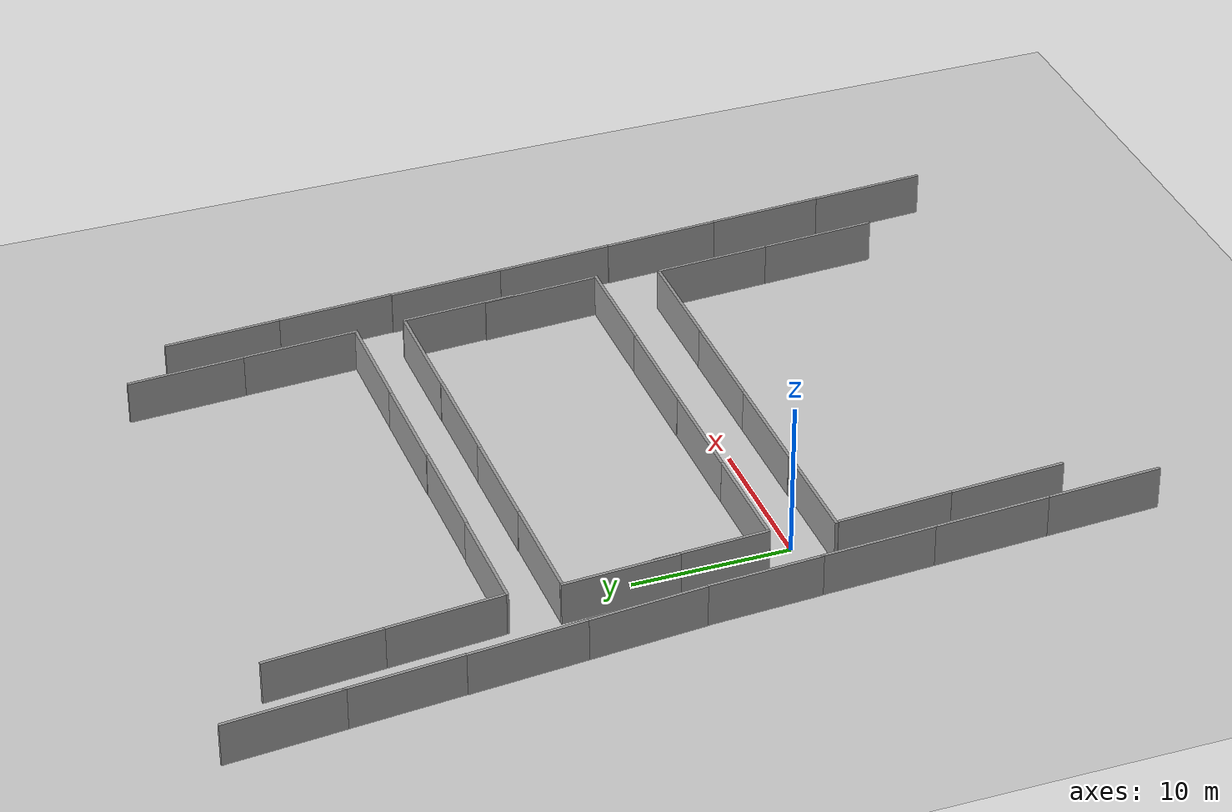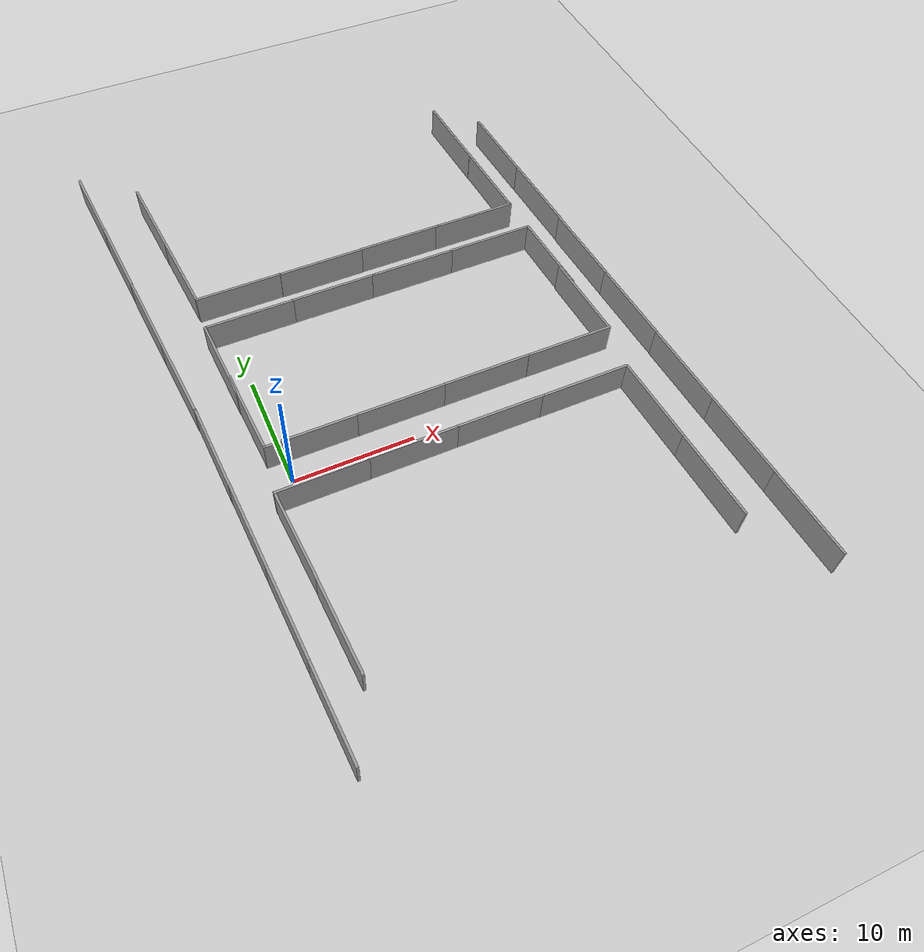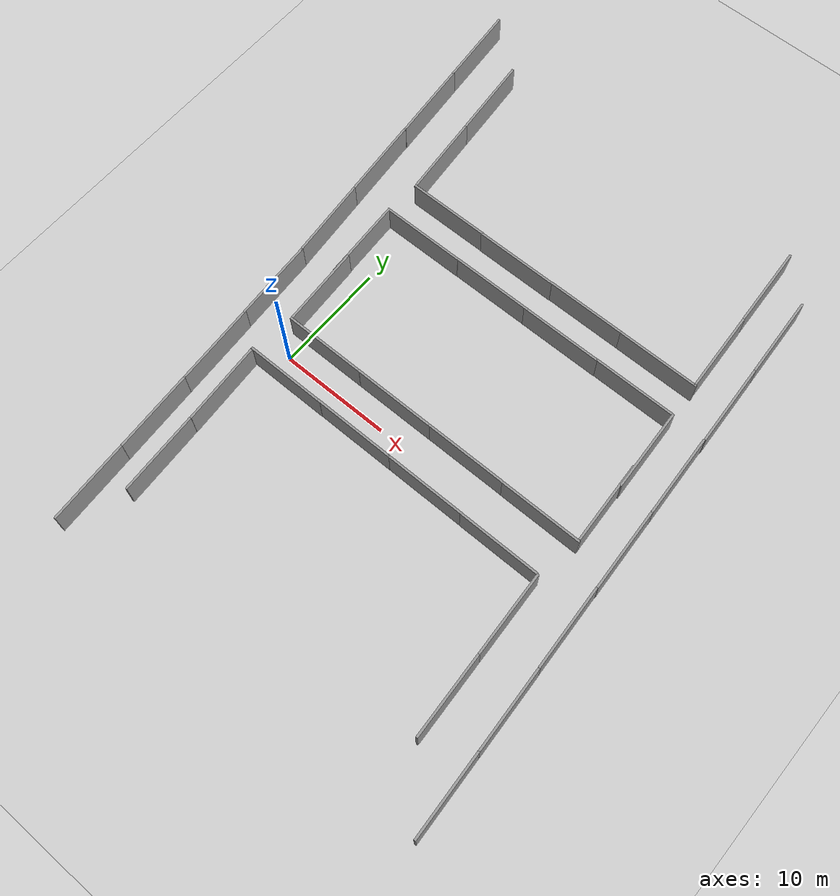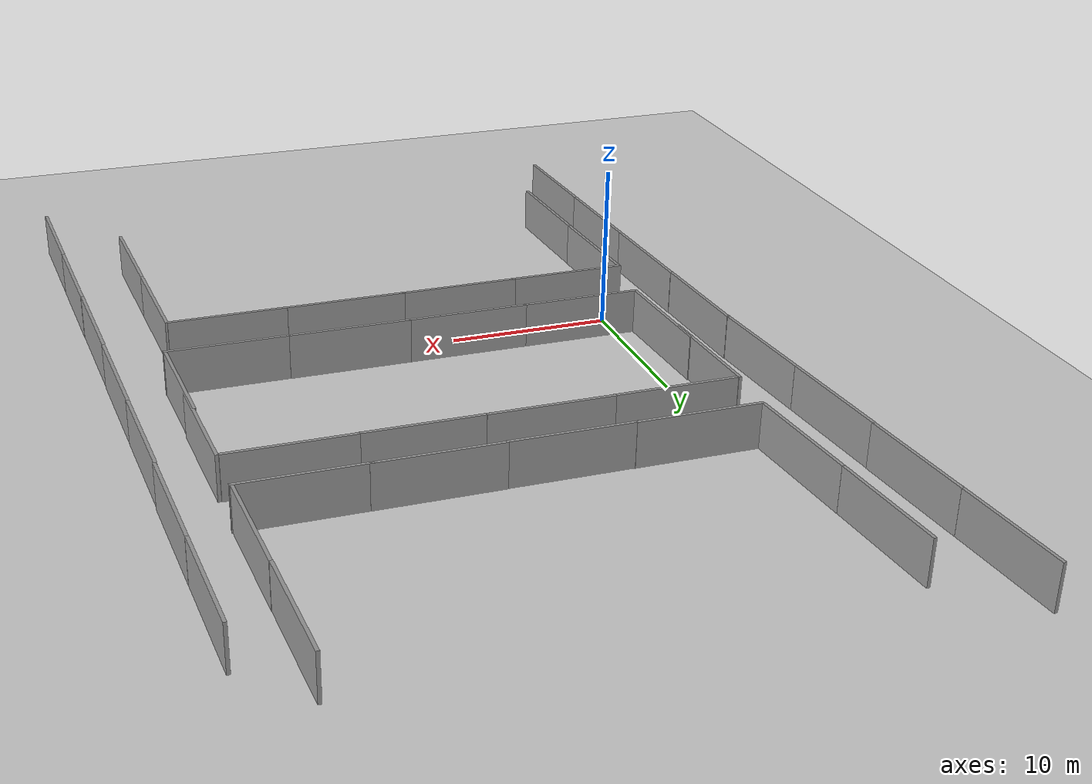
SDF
<sdf version="1.7">
 <world name="default">
  <light name="sun" type="directional">
   <pose>0 0 10 0 -0 0</pose>
   <diffuse>0.8 0.8 0.8 1</diffuse>
   <specular>0.2 0.2 0.2 1</specular>
   <attenuation>
    <range>1000</range>
    <constant>0.9</constant>
    <linear>0.01</linear>
    <quadratic>0.001</quadratic>
   </attenuation>
   <direction>-0.5 0.1 -0.9</direction>
   <spot><inner_angle>0</inner_angle><outer_angle>0</outer_angle><falloff>0</falloff></spot>
  </light>
  <model name="ground_plane">
   <static>1</static>
   <link name="link">
    <collision name="collision">
     <geometry><plane><normal>0 0 1</normal><size>100 100</size></plane></geometry>
     <surface>
      <contact><collide_bitmask>65535</collide_bitmask></contact>
      <friction><ode><mu>100</mu><mu2>50</mu2></ode></friction>
     </surface>
    </collision>
    <visual name="visual">
     <cast_shadows>0</cast_shadows>
     <geometry><plane><normal>0 0 1</normal><size>100 100</size></plane></geometry>
     <material>
      <script><uri>file://media/materials/scripts/gazebo.material</uri><name>Gazebo/Grey</name></script>
     </material>
    </visual>
   </link>
  </model>
  <gravity>0 0 -9.8</gravity>
  <magnetic_field>6e-06 2.3e-05 -4.2e-05</magnetic_field>
  <atmosphere type="adiabatic"/>
  <physics type="ode">
   <max_step_size>0.001</max_step_size>
   <real_time_factor>1</real_time_factor>
   <real_time_update_rate>1000</real_time_update_rate>
  </physics>
  <scene><ambient>0.4 0.4 0.4 1</ambient><background>0.7 0.7 0.7 1</background><shadows>1</shadows></scene>
  <spherical_coordinates>
   <surface_model>EARTH_WGS84</surface_model>
   <latitude_deg>0</latitude_deg>
   <longitude_deg>0</longitude_deg>
   <elevation>0</elevation>
   <heading_deg>0</heading_deg>
  </spherical_coordinates>
  <model name="grey_wall_0">
   <static>1</static>
   <link name="link">
    <pose>0 0 1.4 0 -0 0</pose>
    <collision name="collision"><geometry><box><size>7.5 0.2 2.8</size></box></geometry></collision>
    <visual name="visual">
     <cast_shadows>0</cast_shadows>
     <geometry><box><size>7.5 0.2 2.8</size></box></geometry>
     <material>
      <script>
       <uri>model://grey_wall/materials/scripts</uri>
       <uri>model://grey_wall/materials/textures</uri>
       <name>vrc/grey_wall</name>
      </script>
     </material>
    </visual>
   </link>
   <pose>9.01545 -1.9992 0 0 -0 0</pose>
  </model>
  <model name="grey_wall_1">
   <static>1</static>
   <link name="link">
    <pose>0 0 1.4 0 -0 0</pose>
    <collision name="collision"><geometry><box><size>7.5 0.2 2.8</size></box></geometry></collision>
    <visual name="visual">
     <cast_shadows>0</cast_shadows>
     <geometry><box><size>7.5 0.2 2.8</size></box></geometry>
     <material>
      <script>
       <uri>model://grey_wall/materials/scripts</uri>
       <uri>model://grey_wall/materials/textures</uri>
       <name>vrc/grey_wall</name>
      </script>
     </material>
    </visual>
   </link>
   <pose>16.3388 -1.99889 0 0 -0 0</pose>
  </model>
  <model name="grey_wall_2">
   <static>1</static>
   <link name="link">
    <pose>0 0 1.4 0 -0 0</pose>
    <collision name="collision"><geometry><box><size>7.5 0.2 2.8</size></box></geometry></collision>
    <visual name="visual">
     <cast_shadows>0</cast_shadows>
     <geometry><box><size>7.5 0.2 2.8</size></box></geometry>
     <material>
      <script>
       <uri>model://grey_wall/materials/scripts</uri>
       <uri>model://grey_wall/materials/textures</uri>
       <name>vrc/grey_wall</name>
      </script>
     </material>
    </visual>
   </link>
   <pose>9.73554 2.01106 0 0 -0 0</pose>
  </model>
  <model name="grey_wall_4">
   <static>1</static>
   <link name="link">
    <pose>0 0 1.4 0 -0 0</pose>
    <collision name="collision"><geometry><box><size>7.5 0.2 2.8</size></box></geometry></collision>
    <visual name="visual">
     <cast_shadows>0</cast_shadows>
     <geometry><box><size>7.5 0.2 2.8</size></box></geometry>
     <material>
      <script>
       <uri>model://grey_wall/materials/scripts</uri>
       <uri>model://grey_wall/materials/textures</uri>
       <name>vrc/grey_wall</name>
      </script>
     </material>
    </visual>
   </link>
   <pose>17.1322 2.01632 0 0 -0 0</pose>
  </model>
  <model name="grey_wall">
   <static>1</static>
   <link name="link">
    <pose>0 0 1.4 0 -0 0</pose>
    <collision name="collision"><geometry><box><size>7.5 0.2 2.8</size></box></geometry></collision>
    <visual name="visual">
     <cast_shadows>0</cast_shadows>
     <geometry><box><size>7.5 0.2 2.8</size></box></geometry>
     <material>
      <script>
       <uri>model://grey_wall/materials/scripts</uri>
       <uri>model://grey_wall/materials/textures</uri>
       <name>vrc/grey_wall</name>
      </script>
     </material>
    </visual>
   </link>
   <pose>2.3701 2.00931 0 0 -0 0</pose>
  </model>
  <model name="grey_wall_3">
   <static>1</static>
   <link name="link">
    <pose>0 0 1.4 0 -0 0</pose>
    <collision name="collision"><geometry><box><size>7.5 0.2 2.8</size></box></geometry></collision>
    <visual name="visual">
     <cast_shadows>0</cast_shadows>
     <geometry><box><size>7.5 0.2 2.8</size></box></geometry>
     <material>
      <script>
       <uri>model://grey_wall/materials/scripts</uri>
       <uri>model://grey_wall/materials/textures</uri>
       <name>vrc/grey_wall</name>
      </script>
     </material>
    </visual>
   </link>
   <pose>1.78281 -2.0111 0 0 -0 0</pose>
  </model>
  <model name="grey_wall_2_clone">
   <static>1</static>
   <link name="link">
    <pose>0 0 1.4 0 -0 0</pose>
    <collision name="collision"><geometry><box><size>7.5 0.2 2.8</size></box></geometry></collision>
    <visual name="visual">
     <cast_shadows>0</cast_shadows>
     <geometry><box><size>7.5 0.2 2.8</size></box></geometry>
     <material>
      <script>
       <uri>model://grey_wall/materials/scripts</uri>
       <uri>model://grey_wall/materials/textures</uri>
       <name>vrc/grey_wall</name>
      </script>
     </material>
    </visual>
   </link>
   <pose>24.5726 2.00135 0 0 -0 0</pose>
  </model>
  <model name="grey_wall_2_clone_0">
   <static>1</static>
   <link name="link">
    <pose>0 0 1.4 0 -0 0</pose>
    <collision name="collision"><geometry><box><size>7.5 0.2 2.8</size></box></geometry></collision>
    <visual name="visual">
     <cast_shadows>0</cast_shadows>
     <geometry><box><size>7.5 0.2 2.8</size></box></geometry>
     <material>
      <script>
       <uri>model://grey_wall/materials/scripts</uri>
       <uri>model://grey_wall/materials/textures</uri>
       <name>vrc/grey_wall</name>
      </script>
     </material>
    </visual>
   </link>
   <pose>23.685 -2.01005 0 0 -0 0</pose>
  </model>
  <model name="grey_wall_clone">
   <static>1</static>
   <link name="link">
    <pose>0 0 1.4 0 -0 0</pose>
    <collision name="collision"><geometry><box><size>7.5 0.2 2.8</size></box></geometry></collision>
    <visual name="visual">
     <cast_shadows>0</cast_shadows>
     <geometry><box><size>7.5 0.2 2.8</size></box></geometry>
     <material>
      <script>
       <uri>model://grey_wall/materials/scripts</uri>
       <uri>model://grey_wall/materials/textures</uri>
       <name>vrc/grey_wall</name>
      </script>
     </material>
    </visual>
   </link>
   <pose>-1.62258 -5.8717 0 0 -0 1.63322</pose>
  </model>
  <model name="grey_wall_clone_0">
   <static>1</static>
   <link name="link">
    <pose>0 0 1.4 0 -0 0</pose>
    <collision name="collision"><geometry><box><size>7.5 0.2 2.8</size></box></geometry></collision>
    <visual name="visual">
     <cast_shadows>0</cast_shadows>
     <geometry><box><size>7.5 0.2 2.8</size></box></geometry>
     <material>
      <script>
       <uri>model://grey_wall/materials/scripts</uri>
       <uri>model://grey_wall/materials/textures</uri>
       <name>vrc/grey_wall</name>
      </script>
     </material>
    </visual>
   </link>
   <pose>1.82683 14.9975 0 0 -0 0</pose>
  </model>
  <model name="grey_wall_clone_1">
   <static>1</static>
   <link name="link">
    <pose>0 0 1.4 0 -0 0</pose>
    <collision name="collision"><geometry><box><size>7.5 0.2 2.8</size></box></geometry></collision>
    <visual name="visual">
     <cast_shadows>0</cast_shadows>
     <geometry><box><size>7.5 0.2 2.8</size></box></geometry>
     <material>
      <script>
       <uri>model://grey_wall/materials/scripts</uri>
       <uri>model://grey_wall/materials/textures</uri>
       <name>vrc/grey_wall</name>
      </script>
     </material>
    </visual>
   </link>
   <pose>9.19988 15.012 0 0 -0 0</pose>
  </model>
  <model name="grey_wall_clone_2">
   <static>1</static>
   <link name="link">
    <pose>0 0 1.4 0 -0 0</pose>
    <collision name="collision"><geometry><box><size>7.5 0.2 2.8</size></box></geometry></collision>
    <visual name="visual">
     <cast_shadows>0</cast_shadows>
     <geometry><box><size>7.5 0.2 2.8</size></box></geometry>
     <material>
      <script>
       <uri>model://grey_wall/materials/scripts</uri>
       <uri>model://grey_wall/materials/textures</uri>
       <name>vrc/grey_wall</name>
      </script>
     </material>
    </visual>
   </link>
   <pose>16.4075 15.0031 0 0 -0 0</pose>
  </model>
  <model name="grey_wall_clone_3">
   <static>1</static>
   <link name="link">
    <pose>0 0 1.4 0 -0 0</pose>
    <collision name="collision"><geometry><box><size>7.5 0.2 2.8</size></box></geometry></collision>
    <visual name="visual">
     <cast_shadows>0</cast_shadows>
     <geometry><box><size>7.5 0.2 2.8</size></box></geometry>
     <material>
      <script>
       <uri>model://grey_wall/materials/scripts</uri>
       <uri>model://grey_wall/materials/textures</uri>
       <name>vrc/grey_wall</name>
      </script>
     </material>
    </visual>
   </link>
   <pose>-5.40325 10.9959 0 0 -0 1.65673</pose>
  </model>
  <model name="grey_wall_clone_4">
   <static>1</static>
   <link name="link">
    <pose>0 0 1.4 0 -0 0</pose>
    <collision name="collision"><geometry><box><size>7.5 0.2 2.8</size></box></geometry></collision>
    <visual name="visual">
     <cast_shadows>0</cast_shadows>
     <geometry><box><size>7.5 0.2 2.8</size></box></geometry>
     <material>
      <script>
       <uri>model://grey_wall/materials/scripts</uri>
       <uri>model://grey_wall/materials/textures</uri>
       <name>vrc/grey_wall</name>
      </script>
     </material>
    </visual>
   </link>
   <pose>1.86014 18.2483 0 0 -0 0</pose>
  </model>
  <model name="grey_wall_clone_5">
   <static>1</static>
   <link name="link">
    <pose>0 0 1.4 0 -0 0</pose>
    <collision name="collision"><geometry><box><size>7.5 0.2 2.8</size></box></geometry></collision>
    <visual name="visual">
     <cast_shadows>0</cast_shadows>
     <geometry><box><size>7.5 0.2 2.8</size></box></geometry>
     <material>
      <script>
       <uri>model://grey_wall/materials/scripts</uri>
       <uri>model://grey_wall/materials/textures</uri>
       <name>vrc/grey_wall</name>
      </script>
     </material>
    </visual>
   </link>
   <pose>9.25704 18.223 0 0 -0 0</pose>
  </model>
  <model name="grey_wall_clone_6">
   <static>1</static>
   <link name="link">
    <pose>0 0 1.4 0 -0 0</pose>
    <collision name="collision"><geometry><box><size>7.5 0.2 2.8</size></box></geometry></collision>
    <visual name="visual">
     <cast_shadows>0</cast_shadows>
     <geometry><box><size>7.5 0.2 2.8</size></box></geometry>
     <material>
      <script>
       <uri>model://grey_wall/materials/scripts</uri>
       <uri>model://grey_wall/materials/textures</uri>
       <name>vrc/grey_wall</name>
      </script>
     </material>
    </visual>
   </link>
   <pose>16.5907 18.2523 0 0 -0 0</pose>
  </model>
  <model name="grey_wall_clone_7">
   <static>1</static>
   <link name="link">
    <pose>0 0 1.4 0 -0 0</pose>
    <collision name="collision"><geometry><box><size>7.5 0.2 2.8</size></box></geometry></collision>
    <visual name="visual">
     <cast_shadows>0</cast_shadows>
     <geometry><box><size>7.5 0.2 2.8</size></box></geometry>
     <material>
      <script>
       <uri>model://grey_wall/materials/scripts</uri>
       <uri>model://grey_wall/materials/textures</uri>
       <name>vrc/grey_wall</name>
      </script>
     </material>
    </visual>
   </link>
   <pose>-1.84406 11.348 0 0 -0 1.62424</pose>
  </model>
  <model name="grey_wall_clone_7_clone">
   <static>1</static>
   <link name="link">
    <pose>0 0 1.4 0 -0 0</pose>
    <collision name="collision"><geometry><box><size>7.5 0.2 2.8</size></box></geometry></collision>
    <visual name="visual">
     <cast_shadows>0</cast_shadows>
     <geometry><box><size>7.5 0.2 2.8</size></box></geometry>
     <material>
      <script>
       <uri>model://grey_wall/materials/scripts</uri>
       <uri>model://grey_wall/materials/textures</uri>
       <name>vrc/grey_wall</name>
      </script>
     </material>
    </visual>
   </link>
   <pose>-1.49108 5.66918 0 0 -0 1.62424</pose>
  </model>
  <model name="grey_wall_clone_7_clone_0">
   <static>1</static>
   <link name="link">
    <pose>0 0 1.4 0 -0 0</pose>
    <collision name="collision"><geometry><box><size>7.5 0.2 2.8</size></box></geometry></collision>
    <visual name="visual">
     <cast_shadows>0</cast_shadows>
     <geometry><box><size>7.5 0.2 2.8</size></box></geometry>
     <material>
      <script>
       <uri>model://grey_wall/materials/scripts</uri>
       <uri>model://grey_wall/materials/textures</uri>
       <name>vrc/grey_wall</name>
      </script>
     </material>
    </visual>
   </link>
   <pose>-1.20929 -13.2982 0 0 -0 1.62424</pose>
  </model>
  <model name="grey_wall_clone_7_clone_1">
   <static>1</static>
   <link name="link">
    <pose>0 0 1.4 0 -0 0</pose>
    <collision name="collision"><geometry><box><size>7.5 0.2 2.8</size></box></geometry></collision>
    <visual name="visual">
     <cast_shadows>0</cast_shadows>
     <geometry><box><size>7.5 0.2 2.8</size></box></geometry>
     <material>
      <script>
       <uri>model://grey_wall/materials/scripts</uri>
       <uri>model://grey_wall/materials/textures</uri>
       <name>vrc/grey_wall</name>
      </script>
     </material>
    </visual>
   </link>
   <pose>-4.86503 3.67502 0 0 -0 1.62424</pose>
  </model>
  <model name="grey_wall_clone_7_clone_2">
   <static>1</static>
   <link name="link">
    <pose>0 0 1.4 0 -0 0</pose>
    <collision name="collision"><geometry><box><size>7.5 0.2 2.8</size></box></geometry></collision>
    <visual name="visual">
     <cast_shadows>0</cast_shadows>
     <geometry><box><size>7.5 0.2 2.8</size></box></geometry>
     <material>
      <script>
       <uri>model://grey_wall/materials/scripts</uri>
       <uri>model://grey_wall/materials/textures</uri>
       <name>vrc/grey_wall</name>
      </script>
     </material>
    </visual>
   </link>
   <pose>-4.45293 -3.65587 0 0 -0 1.62424</pose>
  </model>
  <model name="grey_wall_clone_7_clone_3">
   <static>1</static>
   <link name="link">
    <pose>0 0 1.4 0 -0 0</pose>
    <collision name="collision"><geometry><box><size>7.5 0.2 2.8</size></box></geometry></collision>
    <visual name="visual">
     <cast_shadows>0</cast_shadows>
     <geometry><box><size>7.5 0.2 2.8</size></box></geometry>
     <material>
      <script>
       <uri>model://grey_wall/materials/scripts</uri>
       <uri>model://grey_wall/materials/textures</uri>
       <name>vrc/grey_wall</name>
      </script>
     </material>
    </visual>
   </link>
   <pose>-4.06087 -11.0192 0 0 -0 1.62424</pose>
  </model>
  <model name="grey_wall_clone_7_clone_4">
   <static>1</static>
   <link name="link">
    <pose>0 0 1.4 0 -0 0</pose>
    <collision name="collision"><geometry><box><size>7.5 0.2 2.8</size></box></geometry></collision>
    <visual name="visual">
     <cast_shadows>0</cast_shadows>
     <geometry><box><size>7.5 0.2 2.8</size></box></geometry>
     <material>
      <script>
       <uri>model://grey_wall/materials/scripts</uri>
       <uri>model://grey_wall/materials/textures</uri>
       <name>vrc/grey_wall</name>
      </script>
     </material>
    </visual>
   </link>
   <pose>-3.66648 -18.47 0 0 -0 1.62424</pose>
  </model>
  <model name="grey_wall_clone_7_clone_5">
   <static>1</static>
   <link name="link">
    <pose>0 0 1.4 0 -0 0</pose>
    <collision name="collision"><geometry><box><size>7.5 0.2 2.8</size></box></geometry></collision>
    <visual name="visual">
     <cast_shadows>0</cast_shadows>
     <geometry><box><size>7.5 0.2 2.8</size></box></geometry>
     <material>
      <script>
       <uri>model://grey_wall/materials/scripts</uri>
       <uri>model://grey_wall/materials/textures</uri>
       <name>vrc/grey_wall</name>
      </script>
     </material>
    </visual>
   </link>
   <pose>27.9942 5.8659 0 0 -0 1.62424</pose>
  </model>
  <model name="grey_wall_clone_7_clone_6">
   <static>1</static>
   <link name="link">
    <pose>0 0 1.4 0 -0 0</pose>
    <collision name="collision"><geometry><box><size>7.5 0.2 2.8</size></box></geometry></collision>
    <visual name="visual">
     <cast_shadows>0</cast_shadows>
     <geometry><box><size>7.5 0.2 2.8</size></box></geometry>
     <material>
      <script>
       <uri>model://grey_wall/materials/scripts</uri>
       <uri>model://grey_wall/materials/textures</uri>
       <name>vrc/grey_wall</name>
      </script>
     </material>
    </visual>
   </link>
   <pose>27.7891 11.3567 0 0 -0 1.62424</pose>
  </model>
  <model name="grey_wall_clone_7_clone_7">
   <static>1</static>
   <link name="link">
    <pose>0 0 1.4 0 -0 0</pose>
    <collision name="collision"><geometry><box><size>7.5 0.2 2.8</size></box></geometry></collision>
    <visual name="visual">
     <cast_shadows>0</cast_shadows>
     <geometry><box><size>7.5 0.2 2.8</size></box></geometry>
     <material>
      <script>
       <uri>model://grey_wall/materials/scripts</uri>
       <uri>model://grey_wall/materials/textures</uri>
       <name>vrc/grey_wall</name>
      </script>
     </material>
    </visual>
   </link>
   <pose>27.6747 -5.7405 0 0 -0 1.62424</pose>
  </model>
  <model name="grey_wall_clone_7_clone_8">
   <static>1</static>
   <link name="link">
    <pose>0 0 1.4 0 -0 0</pose>
    <collision name="collision"><geometry><box><size>7.5 0.2 2.8</size></box></geometry></collision>
    <visual name="visual">
     <cast_shadows>0</cast_shadows>
     <geometry><box><size>7.5 0.2 2.8</size></box></geometry>
     <material>
      <script>
       <uri>model://grey_wall/materials/scripts</uri>
       <uri>model://grey_wall/materials/textures</uri>
       <name>vrc/grey_wall</name>
      </script>
     </material>
    </visual>
   </link>
   <pose>31.2871 3.7562 0 0 -0 1.62424</pose>
  </model>
  <model name="grey_wall_clone_7_clone_9">
   <static>1</static>
   <link name="link">
    <pose>0 0 1.4 0 -0 0</pose>
    <collision name="collision"><geometry><box><size>7.5 0.2 2.8</size></box></geometry></collision>
    <visual name="visual">
     <cast_shadows>0</cast_shadows>
     <geometry><box><size>7.5 0.2 2.8</size></box></geometry>
     <material>
      <script>
       <uri>model://grey_wall/materials/scripts</uri>
       <uri>model://grey_wall/materials/textures</uri>
       <name>vrc/grey_wall</name>
      </script>
     </material>
    </visual>
   </link>
   <pose>31.6611 -3.72659 0 0 -0 1.62424</pose>
  </model>
  <model name="grey_wall_clone_7_clone_10">
   <static>1</static>
   <link name="link">
    <pose>0 0 1.4 0 -0 0</pose>
    <collision name="collision"><geometry><box><size>7.5 0.2 2.8</size></box></geometry></collision>
    <visual name="visual">
     <cast_shadows>0</cast_shadows>
     <geometry><box><size>7.5 0.2 2.8</size></box></geometry>
     <material>
      <script>
       <uri>model://grey_wall/materials/scripts</uri>
       <uri>model://grey_wall/materials/textures</uri>
       <name>vrc/grey_wall</name>
      </script>
     </material>
    </visual>
   </link>
   <pose>32.0743 -11.1763 0 0 -0 1.62424</pose>
  </model>
  <model name="grey_wall_clone_7_clone_11">
   <static>1</static>
   <link name="link">
    <pose>0 0 1.4 0 -0 0</pose>
    <collision name="collision"><geometry><box><size>7.5 0.2 2.8</size></box></geometry></collision>
    <visual name="visual">
     <cast_shadows>0</cast_shadows>
     <geometry><box><size>7.5 0.2 2.8</size></box></geometry>
     <material>
      <script>
       <uri>model://grey_wall/materials/scripts</uri>
       <uri>model://grey_wall/materials/textures</uri>
       <name>vrc/grey_wall</name>
      </script>
     </material>
    </visual>
   </link>
   <pose>28.0724 -13.2254 0 0 -0 1.62424</pose>
  </model>
  <model name="grey_wall_clone_7_clone_12">
   <static>1</static>
   <link name="link">
    <pose>0 0 1.4 0 -0 0</pose>
    <collision name="collision"><geometry><box><size>7.5 0.2 2.8</size></box></geometry></collision>
    <visual name="visual">
     <cast_shadows>0</cast_shadows>
     <geometry><box><size>7.5 0.2 2.8</size></box></geometry>
     <material>
      <script>
       <uri>model://grey_wall/materials/scripts</uri>
       <uri>model://grey_wall/materials/textures</uri>
       <name>vrc/grey_wall</name>
      </script>
     </material>
    </visual>
   </link>
   <pose>32.4629 -18.5795 0 0 -0 1.62424</pose>
  </model>
  <model name="grey_wall_clone_7_clone_13">
   <static>1</static>
   <link name="link">
    <pose>0 0 1.4 0 -0 0</pose>
    <collision name="collision"><geometry><box><size>7.5 0.2 2.8</size></box></geometry></collision>
    <visual name="visual">
     <cast_shadows>0</cast_shadows>
     <geometry><box><size>7.5 0.2 2.8</size></box></geometry>
     <material>
      <script>
       <uri>model://grey_wall/materials/scripts</uri>
       <uri>model://grey_wall/materials/textures</uri>
       <name>vrc/grey_wall</name>
      </script>
     </material>
    </visual>
   </link>
   <pose>30.9016 11.1622 0 0 -0 1.62424</pose>
  </model>
  <model name="grey_wall_clone_7_clone_14">
   <static>1</static>
   <link name="link">
    <pose>0 0 1.4 0 -0 0</pose>
    <collision name="collision"><geometry><box><size>7.5 0.2 2.8</size></box></geometry></collision>
    <visual name="visual">
     <cast_shadows>0</cast_shadows>
     <geometry><box><size>7.5 0.2 2.8</size></box></geometry>
     <material>
      <script>
       <uri>model://grey_wall/materials/scripts</uri>
       <uri>model://grey_wall/materials/textures</uri>
       <name>vrc/grey_wall</name>
      </script>
     </material>
    </visual>
   </link>
   <pose>30.5516 18.6552 0 0 -0 1.62424</pose>
  </model>
  <model name="grey_wall_clone_7_clone_15">
   <static>1</static>
   <link name="link">
    <pose>0 0 1.4 0 -0 0</pose>
    <collision name="collision"><geometry><box><size>7.5 0.2 2.8</size></box></geometry></collision>
    <visual name="visual">
     <cast_shadows>0</cast_shadows>
     <geometry><box><size>7.5 0.2 2.8</size></box></geometry>
     <material>
      <script>
       <uri>model://grey_wall/materials/scripts</uri>
       <uri>model://grey_wall/materials/textures</uri>
       <name>vrc/grey_wall</name>
      </script>
     </material>
    </visual>
   </link>
   <pose>27.2263 21.9277 0 0 -0 1.62424</pose>
  </model>
  <model name="grey_wall_clone_7_clone_16">
   <static>1</static>
   <link name="link">
    <pose>0 0 1.4 0 -0 0</pose>
    <collision name="collision"><geometry><box><size>7.5 0.2 2.8</size></box></geometry></collision>
    <visual name="visual">
     <cast_shadows>0</cast_shadows>
     <geometry><box><size>7.5 0.2 2.8</size></box></geometry>
     <material>
      <script>
       <uri>model://grey_wall/materials/scripts</uri>
       <uri>model://grey_wall/materials/textures</uri>
       <name>vrc/grey_wall</name>
      </script>
     </material>
    </visual>
   </link>
   <pose>30.1448 26.1492 0 0 -0 1.62424</pose>
  </model>
  <model name="grey_wall_clone_7_clone_17">
   <static>1</static>
   <link name="link">
    <pose>0 0 1.4 0 -0 0</pose>
    <collision name="collision"><geometry><box><size>7.5 0.2 2.8</size></box></geometry></collision>
    <visual name="visual">
     <cast_shadows>0</cast_shadows>
     <geometry><box><size>7.5 0.2 2.8</size></box></geometry>
     <material>
      <script>
       <uri>model://grey_wall/materials/scripts</uri>
       <uri>model://grey_wall/materials/textures</uri>
       <name>vrc/grey_wall</name>
      </script>
     </material>
    </visual>
   </link>
   <pose>26.8098 29.402 0 0 -0 1.62424</pose>
  </model>
  <model name="grey_wall_clone_6_clone">
   <static>1</static>
   <link name="link">
    <pose>0 0 1.4 0 -0 0</pose>
    <collision name="collision"><geometry><box><size>7.5 0.2 2.8</size></box></geometry></collision>
    <visual name="visual">
     <cast_shadows>0</cast_shadows>
     <geometry><box><size>7.5 0.2 2.8</size></box></geometry>
     <material>
      <script>
       <uri>model://grey_wall/materials/scripts</uri>
       <uri>model://grey_wall/materials/textures</uri>
       <name>vrc/grey_wall</name>
      </script>
     </material>
    </visual>
   </link>
   <pose>23.8178 18.2451 0 0 -0 0</pose>
  </model>
  <model name="grey_wall_clone_6_clone_0">
   <static>1</static>
   <link name="link">
    <pose>0 0 1.4 0 -0 0</pose>
    <collision name="collision"><geometry><box><size>7.5 0.2 2.8</size></box></geometry></collision>
    <visual name="visual">
     <cast_shadows>0</cast_shadows>
     <geometry><box><size>7.5 0.2 2.8</size></box></geometry>
     <material>
      <script>
       <uri>model://grey_wall/materials/scripts</uri>
       <uri>model://grey_wall/materials/textures</uri>
       <name>vrc/grey_wall</name>
      </script>
     </material>
    </visual>
   </link>
   <pose>23.7299 15.0245 0 0 -0 0</pose>
  </model>
  <model name="grey_wall_clone_3_clone">
   <static>1</static>
   <link name="link">
    <pose>0 0 1.4 0 -0 0</pose>
    <collision name="collision"><geometry><box><size>7.5 0.2 2.8</size></box></geometry></collision>
    <visual name="visual">
     <cast_shadows>0</cast_shadows>
     <geometry><box><size>7.5 0.2 2.8</size></box></geometry>
     <material>
      <script>
       <uri>model://grey_wall/materials/scripts</uri>
       <uri>model://grey_wall/materials/textures</uri>
       <name>vrc/grey_wall</name>
      </script>
     </material>
    </visual>
   </link>
   <pose>-6.05029 18.47 0 0 -0 1.65673</pose>
  </model>
  <model name="grey_wall_clone_3_clone_0">
   <static>1</static>
   <link name="link">
    <pose>0 0 1.4 0 -0 0</pose>
    <collision name="collision"><geometry><box><size>7.5 0.2 2.8</size></box></geometry></collision>
    <visual name="visual">
     <cast_shadows>0</cast_shadows>
     <geometry><box><size>7.5 0.2 2.8</size></box></geometry>
     <material>
      <script>
       <uri>model://grey_wall/materials/scripts</uri>
       <uri>model://grey_wall/materials/textures</uri>
       <name>vrc/grey_wall</name>
      </script>
     </material>
    </visual>
   </link>
   <pose>-2.15116 22.06 0 0 -0 1.65673</pose>
  </model>
  <model name="grey_wall_clone_3_clone_1">
   <static>1</static>
   <link name="link">
    <pose>0 0 1.4 0 -0 0</pose>
    <collision name="collision"><geometry><box><size>7.5 0.2 2.8</size></box></geometry></collision>
    <visual name="visual">
     <cast_shadows>0</cast_shadows>
     <geometry><box><size>7.5 0.2 2.8</size></box></geometry>
     <material>
      <script>
       <uri>model://grey_wall/materials/scripts</uri>
       <uri>model://grey_wall/materials/textures</uri>
       <name>vrc/grey_wall</name>
      </script>
     </material>
    </visual>
   </link>
   <pose>-6.65865 25.8293 0 0 -0 1.65673</pose>
  </model>
  <model name="grey_wall_clone_3_clone_2">
   <static>1</static>
   <link name="link">
    <pose>0 0 1.4 0 -0 0</pose>
    <collision name="collision"><geometry><box><size>7.5 0.2 2.8</size></box></geometry></collision>
    <visual name="visual">
     <cast_shadows>0</cast_shadows>
     <geometry><box><size>7.5 0.2 2.8</size></box></geometry>
     <material>
      <script>
       <uri>model://grey_wall/materials/scripts</uri>
       <uri>model://grey_wall/materials/textures</uri>
       <name>vrc/grey_wall</name>
      </script>
     </material>
    </visual>
   </link>
   <pose>-2.79536 29.4751 0 0 -0 1.65673</pose>
  </model>
  <model name="grey_wall_clone_3_clone_3">
   <static>1</static>
   <link name="link">
    <pose>0 0 1.4 0 -0 0</pose>
    <collision name="collision"><geometry><box><size>7.5 0.2 2.8</size></box></geometry></collision>
    <visual name="visual">
     <cast_shadows>0</cast_shadows>
     <geometry><box><size>7.5 0.2 2.8</size></box></geometry>
     <material>
      <script>
       <uri>model://grey_wall/materials/scripts</uri>
       <uri>model://grey_wall/materials/textures</uri>
       <name>vrc/grey_wall</name>
      </script>
     </material>
    </visual>
   </link>
   <pose>-7.29375 33.1071 0 0 -0 1.65673</pose>
  </model>
 </world>
</sdf>
